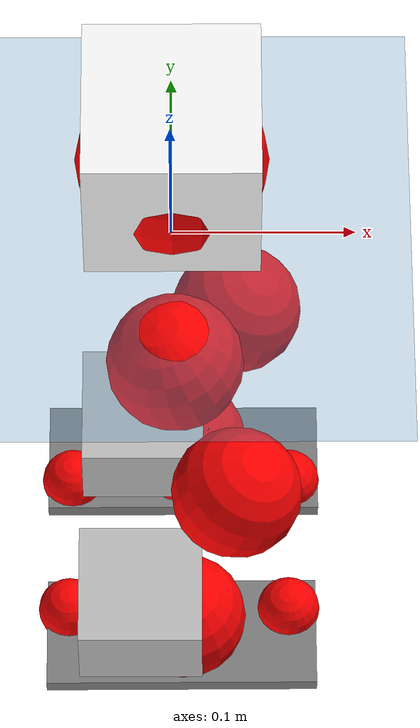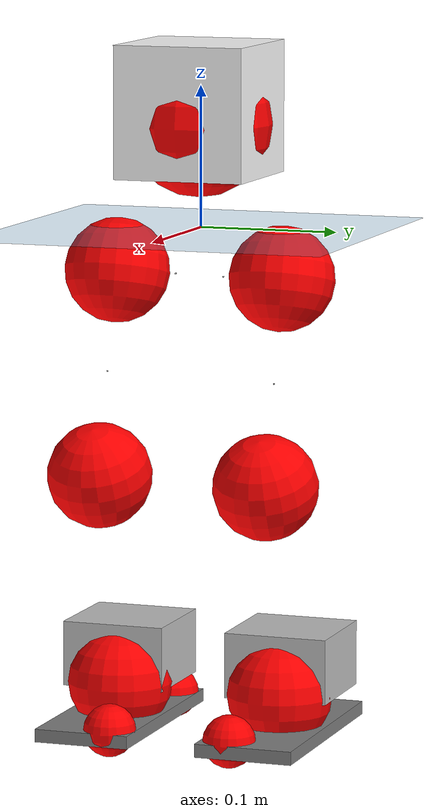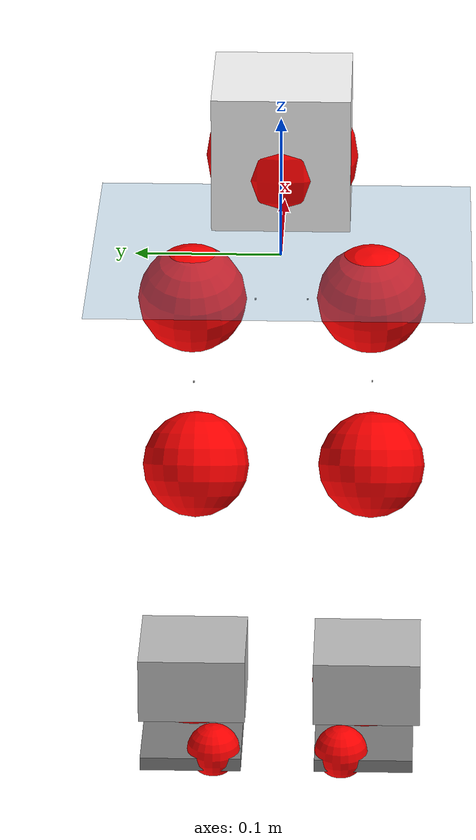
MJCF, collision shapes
<mujoco model="pi_12dof_release_v1">
  <compiler angle="radian" assetdir="assets" balanceinertia="true" inertiafromgeom="false"/>

  <option timestep="0.005" density="1.2" viscosity="2e-05"/>

  <size nkey="1"/>

  <visual>
    <quality shadowsize="8192"/>
    <map shadowclip="0.5"/>
  </visual>

  <default>
    <default class="/">
      <joint armature="0.01" damping="0.01" frictionloss="0.01"/>
      <geom contype="0" conaffinity="0" group="1" solref="-1000 -80"/>
      <site size="0.01 0.005 0.005" group="5"/>
      <general forcelimited="true" biastype="affine" gainprm="20" biasprm="0 -20 -0.5"/>
      <default class="foot">
        <geom size="0.0845 0.036 0.005" type="box" condim="6" group="4" priority="1" friction="0.9 0.2 0.2" solimp="0.015 1 0.005"/>
      </default>
      <default class="reward_collision_sphere">
        <geom group="5" rgba="1 0 0 1"/>
      </default>
    </default>
  </default>

  <asset>
    <texture type="skybox" colorspace="auto" name="//unnamed_texture_0" builtin="gradient" rgb1="0.95 0.95 0.95" rgb2="0.95 0.95 0.95" width="100" height="600"/>
    <texture type="2d" colorspace="auto" name="texplane" builtin="checker" rgb1="0.345 0.575 0.748" rgb2="0.345 0.575 0.748" markrgb="1 1 1" width="512" height="512"/>
    <material name="MatPlane" class="/" texture="texplane" texuniform="true" texrepeat="2 2" specular="0.9"/>
    <mesh name="baselink_1" class="/" file="baselink_1.STL"/>
    <mesh name="r_hip_pitch_link" class="/" file="r_hip_pitch_link.STL"/>
    <mesh name="r_hip_roll_link" class="/" file="r_hip_roll_link.STL"/>
    <mesh name="r_thigh_link" class="/" file="r_thigh_link.STL"/>
    <mesh name="r_calf_link" class="/" file="r_calf_link.STL"/>
    <mesh name="r_ankle_pitch_link" class="/" file="r_ankle_pitch_link.STL"/>
    <mesh name="r_ankle_roll_link" class="/" file="r_ankle_roll_link.STL"/>
    <mesh name="l_hip_pitch_link" class="/" file="l_hip_pitch_link.STL"/>
    <mesh name="l_hip_roll_link" class="/" file="l_hip_roll_link.STL"/>
    <mesh name="l_thigh_link" class="/" file="l_thigh_link.STL"/>
    <mesh name="l_calf_link" class="/" file="l_calf_link.STL"/>
    <mesh name="l_ankle_pitch_link" class="/" file="l_ankle_pitch_link.STL"/>
    <mesh name="l_ankle_roll_link" class="/" file="l_ankle_roll_link.STL"/>
  </asset>

  <worldbody>
    <geom name="floor" class="/" size="100 100 0.125" type="plane" group="0" material="MatPlane"/>
    <light name="toplight_shadow" class="/" pos="0 0 5" dir="0.0990148 0.0990148 -0.990148" type="directional" ambient="0.04 0.04 0.04" diffuse="0.55 0.55 0.55" specular="0.12 0.12 0.12"/>
    <light name="toplight_fill" class="/" pos="0 0 5" dir="0.0990148 0.0990148 -0.990148" type="directional" castshadow="false" ambient="0.04 0.04 0.04" diffuse="0.3 0.3 0.3" specular="0.08 0.08 0.08"/>
    <body name="trunk" pos="0.000944487 -0.00084544 -2.83334e-05" quat="1 -9.53856e-07 -1.60937e-05 -2.91679e-05">
      <inertial pos="0.00201831 -0.000329171 0.0421134" quat="0.698256 0.00748341 0.0100183 0.715739" mass="1.75812" diaginertia="0.00895983 0.00277611 0.00515725"/>
      <joint name="//unnamed_joint_0" type="free"/>
      <geom name="//unnamed_geom_1" class="/" type="mesh" density="0" rgba="1 1 1 1" mesh="baselink_1"/>
      <geom name="//unnamed_geom_2" class="/" size="0.0468714 0.0468714 0.0468714" pos="0 0 0.083426" type="box" rgba="1 1 1 1"/>
      <geom name="//unnamed_geom_3" class="reward_collision_sphere" size="0.0515585" pos="0 0 0.0729977"/>
      <site name="imu" class="/" pos="-0.000891536 -0.00261763 -0.00770184" size="0.00937427"/>
      <camera name="track" class="/" pos="0 -1.5807 0" quat="0.707107 0.707107 0 0" mode="trackcom"/>
      <camera name="ego_camera" class="/" pos="0.0734331 0 0.187708" quat="-0.5 -0.5 0.5 0.5"/>
      <body name="r_hip_pitch_link" pos="0.000514821 -0.0175483 -0.0334546" quat="0.992157 -0.000384312 -0.124999 7.64615e-05">
        <inertial pos="-0.00019252 -0.0433645 3.14954e-05" quat="-0.018405 0.70649 -0.0279613 0.706931" mass="0.305066" diaginertia="9.76905e-05 3.04419e-05 0.000102246"/>
        <joint name="r_hip_pitch_joint" class="/" pos="0 0 0" axis="0.00228783 -0.99996 -0.00864826" range="-1.72128 1.2395" armature="0.00937829" damping="0.019807" frictionloss="0.00935259"/>
        <geom name="//unnamed_geom_4" class="/" type="mesh" density="0" rgba="0.75294 0.75294 0.75294 1" mesh="r_hip_pitch_link"/>
        <geom name="//unnamed_geom_5" class="/" size="0.000468714 0.000468714 0.000468714" type="box" rgba="0.75294 0.75294 0.75294 1"/>
        <body name="r_hip_roll_link" pos="0.000674255 -0.0438214 0.000655085" quat="1 0.000325262 0.000257975 -0.000225333">
          <inertial pos="-0.00128578 -0.000410498 -0.0660065" quat="0.703681 -0.0824756 -0.0806126 0.701094" mass="0.321604" diaginertia="0.000301918 8.64612e-05 0.000160255"/>
          <joint name="r_hip_roll_joint" class="/" pos="0 0 0" axis="-0.999998 0.00133052 0.00150065" range="-0.109059 0.511396" armature="0.00905448" damping="0.0106776" frictionloss="0.00946321"/>
          <geom name="//unnamed_geom_6" class="/" type="mesh" density="0" rgba="0.75294 0.75294 0.75294 1" mesh="r_hip_roll_link"/>
          <geom name="//unnamed_geom_7" class="/" size="0.000468714 0.000468714 0.000468714" type="box" rgba="0.75294 0.75294 0.75294 1"/>
          <geom name="//unnamed_geom_8" class="reward_collision_sphere" size="0.0374971"/>
          <body name="r_thigh_link" pos="-0.000297416 -0.000961211 -0.0725361" quat="1 -3.48234e-05 1.67634e-05 -9.79048e-06">
            <inertial pos="-0.000623505 0.00127365 -0.0493867" quat="0.734941 0.678108 -0.00458597 -0.00313843" mass="0.0911166" diaginertia="0.000111364 2.89829e-05 7.02637e-05"/>
            <joint name="r_thigh_joint" class="/" pos="0 0 0" axis="0.00152462 -2.44388e-05 -0.999999" range="-0.306022 0.622601" armature="0.00948124" damping="0.00489567" frictionloss="0.00983645"/>
            <geom name="//unnamed_geom_9" class="/" type="mesh" density="0" rgba="0.75294 0.75294 0.75294 1" mesh="r_thigh_link"/>
            <geom name="//unnamed_geom_10" class="/" size="0.000468714 0.000468714 0.000468714" type="box" rgba="0.75294 0.75294 0.75294 1"/>
            <body name="r_calf_link" pos="-0.00176815 0.000159718 -0.0738429" quat="0.947626 -4.74771e-05 0.319383 4.81985e-06">
              <inertial pos="0.00109743 -0.00132304 -0.0742165" quat="0.999982 -0.00143547 -0.00303105 0.00497014" mass="0.686912" diaginertia="0.00323079 0.00110585 0.000219392"/>
              <joint name="r_calf_joint" class="/" pos="0 0 0" axis="-0.00361787 -0.99996 -0.00820089" range="-1.65576 0.648472" armature="0.00894535" damping="0.00782059" frictionloss="0.00913315"/>
              <geom name="//unnamed_geom_11" class="/" type="mesh" density="0" rgba="0.75294 0.75294 0.75294 1" mesh="r_calf_link"/>
              <geom name="//unnamed_geom_12" class="/" size="0.000468714 0.000468714 0.000468714" type="box" rgba="0.75294 0.75294 0.75294 1"/>
              <geom name="//unnamed_geom_13" class="reward_collision_sphere" size="0.0374971"/>
              <body name="r_ankle_pitch_link" pos="0.000856471 0.00148587 -0.146564" quat="0.980063 -5.97196e-06 -0.198688 3.32936e-05">
                <inertial pos="0.00569064 0.00487347 -0.000157081" quat="0.0026972 0.707069 -0.00253604 0.707135" mass="0.143888" diaginertia="0.000274621 6.83532e-05 0.000146772"/>
                <joint name="r_ankle_pitch_joint" class="/" pos="0 0 0" axis="-0.00146397 -0.999999 0.000482672" range="-1.31701 0.501824" armature="0.00912158" damping="0.00444742" frictionloss="0.00948996"/>
                <geom name="//unnamed_geom_14" class="/" type="mesh" density="0" rgba="0.75294 0.75294 0.75294 1" mesh="r_ankle_pitch_link"/>
                <geom name="//unnamed_geom_15" class="/" size="0.0365597 0.0374971 0.0234357" type="box" rgba="0.75294 0.75294 0.75294 1"/>
                <body name="r_ankle_roll_link" pos="0.0740866 0.00181198 0.00087516" quat="1 0.000137762 -0.000532914 0.000695829">
                  <inertial pos="-0.0215043 0.000749528 -0.0147347" quat="0.560689 0.432192 0.433267 0.557779" mass="0.421567" diaginertia="0.000999272 0.000318649 0.000354273"/>
                  <joint name="r_ankle_roll_joint" class="/" pos="0 0 0" axis="-0.999972 0.00216637 -0.0071711" range="-0.147553 0.140262" armature="0.0093559" damping="0.0135972" frictionloss="0.00912753"/>
                  <geom name="//unnamed_geom_16" class="/" type="mesh" density="0" rgba="0.75294 0.75294 0.75294 1" mesh="r_ankle_roll_link"/>
                  <geom name="//unnamed_geom_17" class="/" type="mesh" rgba="0.75294 0.75294 0.75294 1" mesh="r_ankle_roll_link"/>
                  <geom name="right_foot" class="foot" size="0.0810354 0.0345206 0.00464727" pos="-0.0499345 0 -0.0458843"/>
                  <geom name="//unnamed_geom_19" class="reward_collision_sphere" size="0.0374971" pos="-0.0489554 0 -0.0208565"/>
                  <geom name="//unnamed_geom_20" class="reward_collision_sphere" size="0.0187485" pos="0.0146866 0.015807 -0.041713"/>
                  <geom name="//unnamed_geom_21" class="reward_collision_sphere" size="0.0187485" pos="-0.117493 0.015807 -0.041713"/>
                  <site name="right_foot" class="foot" pos="-0.0499345 0 -0.0458843" size="0.00937427"/>
                </body>
              </body>
            </body>
          </body>
        </body>
      </body>
      <body name="l_hip_pitch_link" pos="0.00179179 0.0184526 -0.034134" quat="0.992215 -6.76221e-05 -0.12454 0.000124168">
        <inertial pos="0.00221605 0.0405528 -0.000297887" quat="-0.0408417 0.705828 0.0265037 0.706708" mass="0.324186" diaginertia="0.000115378 3.22848e-05 0.000122887"/>
        <joint name="l_hip_pitch_joint" class="/" pos="0 0 0" axis="0.00883295 0.999959 -0.00194616" range="-1.27115 1.76334" armature="0.00866009" damping="0.0131749" frictionloss="0.00891167"/>
        <geom name="//unnamed_geom_22" class="/" type="mesh" density="0" rgba="0.75294 0.75294 0.75294 1" mesh="l_hip_pitch_link"/>
        <geom name="//unnamed_geom_23" class="/" size="0.000468714 0.000468714 0.000468714" type="box" rgba="0.75294 0.75294 0.75294 1"/>
        <body name="l_hip_roll_link" pos="-0.000370343 0.0434654 0.000553195" quat="1 0.000377464 -6.46073e-05 -0.000367353">
          <inertial pos="-0.00201476 0.00155398 -0.0638774" quat="0.699295 -0.0750421 -0.0784485 0.706542" mass="0.32035" diaginertia="0.000300722 8.52756e-05 0.000154488"/>
          <joint name="l_hip_roll_joint" class="/" pos="0 0 0" axis="-0.999981 0.00277523 -0.00545774" range="-0.511053 0.0978093" armature="0.00958163" damping="0.0054948" frictionloss="0.00976982"/>
          <geom name="//unnamed_geom_24" class="/" type="mesh" density="0" rgba="0.75294 0.75294 0.75294 1" mesh="l_hip_roll_link"/>
          <geom name="//unnamed_geom_25" class="/" size="0.000468714 0.000468714 0.000468714" type="box" rgba="0.75294 0.75294 0.75294 1"/>
          <geom name="//unnamed_geom_26" class="reward_collision_sphere" size="0.0374971"/>
          <body name="l_thigh_link" pos="0.000409334 0.00032404 -0.0741181" quat="1 -0.000170527 0.000815281 6.4692e-05">
            <inertial pos="0.000908941 -0.00161315 -0.0477491" quat="0.673839 0.738867 -0.000524283 0.00405749" mass="0.0918001" diaginertia="0.00011317 2.96313e-05 7.13542e-05"/>
            <joint name="l_thigh_joint" class="/" pos="0 0 0" axis="-0.00223337 -0.000111187 -0.999997" range="-0.629527 0.287027" armature="0.0094797" damping="0" frictionloss="0.00951091"/>
            <geom name="//unnamed_geom_27" class="/" type="mesh" density="0" rgba="0.75294 0.75294 0.75294 1" mesh="l_thigh_link"/>
            <geom name="//unnamed_geom_28" class="/" size="0.000468714 0.000468714 0.000468714" type="box" rgba="0.75294 0.75294 0.75294 1"/>
            <body name="l_calf_link" pos="-0.00189416 -0.000484555 -0.0727563" quat="0.947588 -0.000285991 0.319496 1.80551e-05">
              <inertial pos="-5.24885e-05 0.00138096 -0.073246" quat="0.999919 0.00513244 -0.00297872 0.011224" mass="0.666428" diaginertia="0.00311744 0.00106579 0.000212246"/>
              <joint name="l_calf_joint" class="/" pos="0 0 0" axis="0.000832891 0.999978 0.00660145" stiffness="0.000166607" range="-0.656578 1.63612" armature="0.00947986" damping="0.00882587" frictionloss="0.00913042"/>
              <geom name="//unnamed_geom_29" class="/" type="mesh" density="0" rgba="0.75294 0.75294 0.75294 1" mesh="l_calf_link"/>
              <geom name="//unnamed_geom_30" class="/" size="0.000468714 0.000468714 0.000468714" type="box" rgba="0.75294 0.75294 0.75294 1"/>
              <geom name="//unnamed_geom_31" class="reward_collision_sphere" size="0.0374971"/>
              <body name="l_ankle_pitch_link" pos="0.00064939 0.000363779 -0.144988" quat="0.980084 -0.000220973 -0.198585 -0.000239897">
                <inertial pos="0.00429649 -0.000857044 -0.000122209" quat="0.00234166 0.709864 -0.00484015 0.704318" mass="0.144919" diaginertia="0.000278027 6.884e-05 0.000151333"/>
                <joint name="l_ankle_pitch_joint" class="/" pos="0 0 0" axis="0.00161409 0.99999 -0.0041697" range="-0.516539 1.29204" armature="0.00949686" damping="0" frictionloss="0.00956319"/>
                <geom name="//unnamed_geom_32" class="/" type="mesh" density="0" rgba="0.75294 0.75294 0.75294 1" mesh="l_ankle_pitch_link"/>
                <geom name="//unnamed_geom_33" class="/" size="0.0365597 0.0374971 0.0234357" type="box" rgba="0.75294 0.75294 0.75294 1"/>
                <body name="l_ankle_roll_link" pos="0.0743515 0.000117636 0.000178703" quat="1 -6.55615e-05 6.09258e-05 1.41156e-05">
                  <inertial pos="-0.0252757 -0.00226875 -0.0137569" quat="0.560341 0.430673 0.434031 0.558708" mass="0.428672" diaginertia="0.00102039 0.000319638 0.0003474"/>
                  <joint name="l_ankle_roll_joint" class="/" pos="0 0 0" axis="-0.999999 0.0010057 0.000792968" range="-0.148812 0.165637" armature="0.00962675" damping="0.0138259" frictionloss="0.00976952"/>
                  <geom name="//unnamed_geom_34" class="/" type="mesh" density="0" rgba="0.75294 0.75294 0.75294 1" mesh="l_ankle_roll_link"/>
                  <geom name="//unnamed_geom_35" class="/" type="mesh" rgba="0.75294 0.75294 0.75294 1" mesh="l_ankle_roll_link"/>
                  <geom name="left_foot" class="foot" size="0.0825643 0.0353385 0.00477681" pos="-0.0499345 0 -0.0458843"/>
                  <geom name="//unnamed_geom_37" class="reward_collision_sphere" size="0.0374971" pos="-0.0489554 0 -0.0208565"/>
                  <geom name="//unnamed_geom_38" class="reward_collision_sphere" size="0.0187485" pos="0.0146866 -0.015807 -0.041713"/>
                  <geom name="//unnamed_geom_39" class="reward_collision_sphere" size="0.0187485" pos="-0.117493 -0.015807 -0.041713"/>
                  <site name="left_foot" class="foot" pos="-0.0499345 0 -0.0458843" size="0.00937427"/>
                </body>
              </body>
            </body>
          </body>
        </body>
      </body>
    </body>
  </worldbody>

  <contact>
    <pair class="/" geom1="floor" geom2="right_foot" name="//unnamed_contact_1"/>
    <pair class="/" geom1="floor" geom2="left_foot" name="//unnamed_contact_0"/>
  </contact>

  <actuator>
    <general name="r_hip_pitch_joint" class="/" joint="r_hip_pitch_joint" forcerange="-18.9736 18.9736" gainprm="18.9717" biasprm="0 -18.9717 -0.463948"/>
    <general name="r_hip_roll_joint" class="/" joint="r_hip_roll_joint" forcerange="-20.5409 20.5409" gainprm="18.9717" biasprm="0 -18.9717 -0.463948"/>
    <general name="r_thigh_joint" class="/" joint="r_thigh_joint" forcerange="-20.3117 20.3117" gainprm="18.9717" biasprm="0 -18.9717 -0.463948"/>
    <general name="r_calf_joint" class="/" joint="r_calf_joint" forcerange="-20.8473 20.8473" gainprm="18.9717" biasprm="0 -18.9717 -0.463948"/>
    <general name="r_ankle_pitch_joint" class="/" joint="r_ankle_pitch_joint" forcerange="-19.7648 19.7648" gainprm="18.9717" biasprm="0 -18.9717 -0.463948"/>
    <general name="r_ankle_roll_joint" class="/" joint="r_ankle_roll_joint" forcerange="-19.4243 19.4243" gainprm="18.9717" biasprm="0 -18.9717 -0.463948"/>
    <general name="l_hip_pitch_joint" class="/" joint="l_hip_pitch_joint" forcerange="-19.638 19.638" gainprm="18.9717" biasprm="0 -18.9717 -0.463948"/>
    <general name="l_hip_roll_joint" class="/" joint="l_hip_roll_joint" forcerange="-19.3181 19.3181" gainprm="18.9717" biasprm="0 -18.9717 -0.463948"/>
    <general name="l_thigh_joint" class="/" joint="l_thigh_joint" forcerange="-18.978 18.978" gainprm="18.9717" biasprm="0 -18.9717 -0.463948"/>
    <general name="l_calf_joint" class="/" joint="l_calf_joint" forcerange="-19.7606 19.7606" gainprm="18.9717" biasprm="0 -18.9717 -0.463948"/>
    <general name="l_ankle_pitch_joint" class="/" joint="l_ankle_pitch_joint" forcerange="-20.0033 20.0033" gainprm="18.9717" biasprm="0 -18.9717 -0.463948"/>
    <general name="l_ankle_roll_joint" class="/" joint="l_ankle_roll_joint" forcerange="-19.0835 19.0835" gainprm="18.9717" biasprm="0 -18.9717 -0.463948"/>
  </actuator>

  <sensor>
    <gyro site="imu" name="imu_angular_velocity"/>
    <velocimeter site="imu" name="imu_linear_velocity"/>
    <framelinvel objtype="site" objname="left_foot" name="left_foot_global_linear_velocity"/>
    <framelinvel objtype="site" objname="right_foot" name="right_foot_global_linear_velocity"/>
  </sensor>

  <keyframe>
    <key name="home" qpos="0 0 0.291 1 0 0 0 0.4 0 0 -0.8 0.4 0 -0.4 0 0 0.8 -0.4 0"/>
  </keyframe>
</mujoco>
